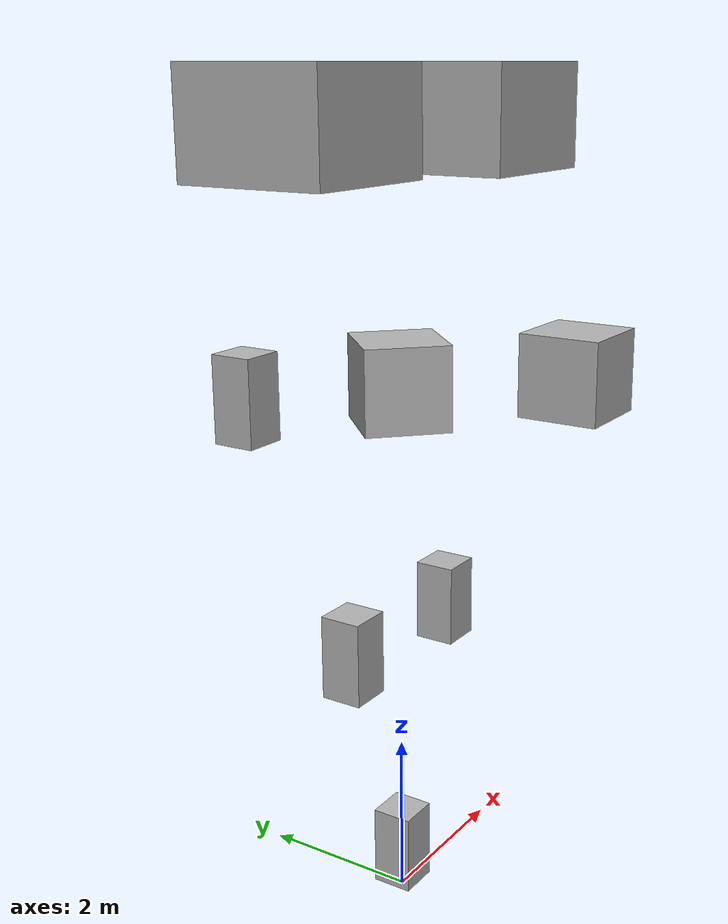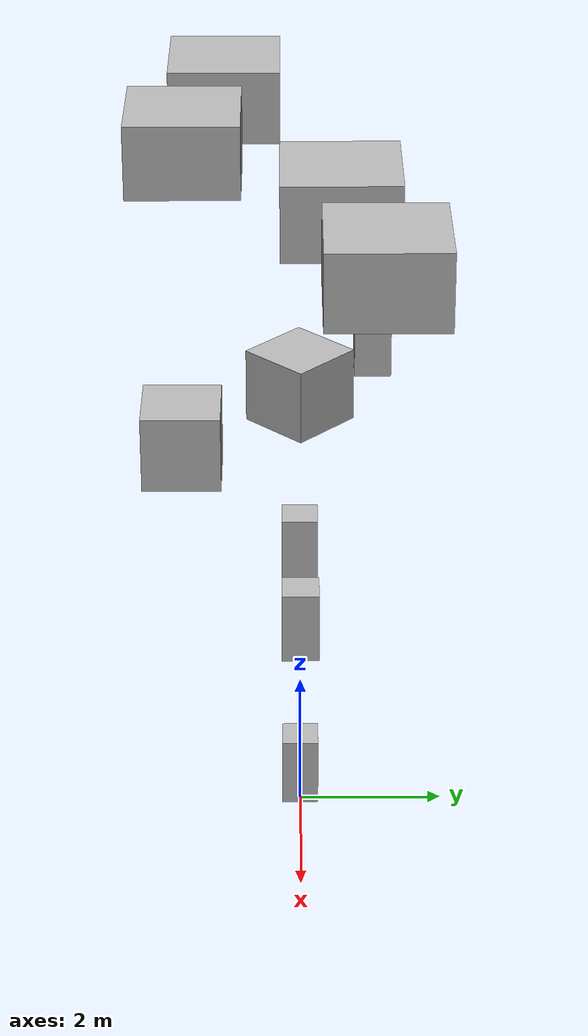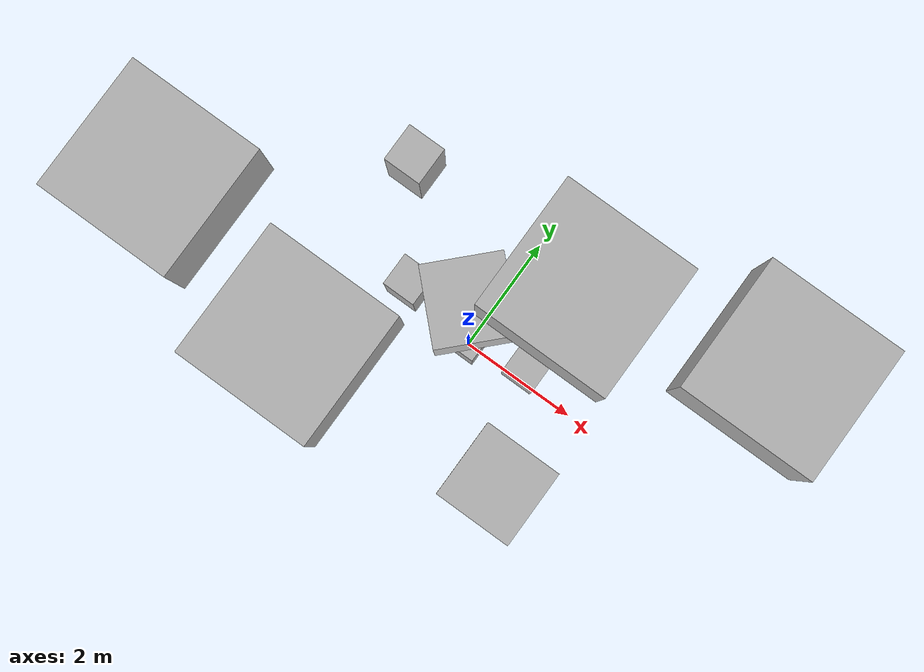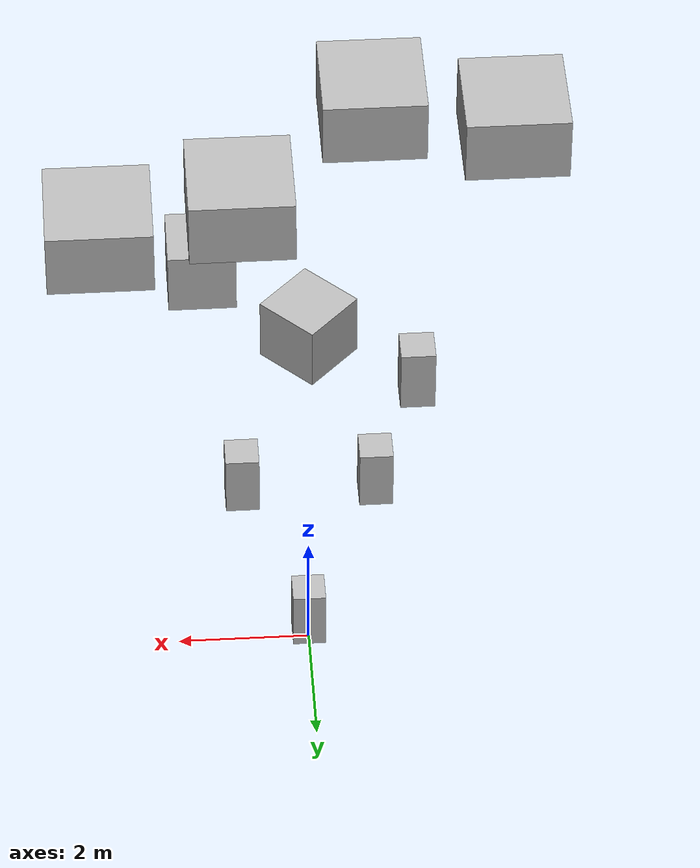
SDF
<?xml version='1.0'?>
<sdf version='1.7'>
  <model name='objects'>
    <!-- Link: cube001 -->
    <link name="cube001">
      <visual name="cube001_visual">
        <pose>0.0 0.0 0.6 0.0 0.0 0.0</pose>
        <geometry>
          <box>
            <size>0.5 0.5 1.0</size>
          </box>
        </geometry>
      </visual>
      <collision name="cube001_collision">
        <pose>0.0 0.0 0.6 0.0 0.0 0.0</pose>
        <geometry>
          <box>
            <size>0.5 0.5 1.0</size>
          </box>
        </geometry>
      </collision>
    </link>
    <joint name="joint_cube001" type="fixed">
      <parent>world</parent>
      <child>cube001</child>
    </joint>

    <!-- Link: cube002 -->
    <link name="cube002">
      <visual name="cube002_visual">
        <pose>-1.0 0.0 3.6 0.0 0.0 0.0</pose>
        <geometry>
          <box>
            <size>0.5 0.5 1.0</size>
          </box>
        </geometry>
      </visual>
      <collision name="cube002_collision">
        <pose>-1.0 0.0 3.6 0.0 0.0 0.0</pose>
        <geometry>
          <box>
            <size>0.5 0.5 1.0</size>
          </box>
        </geometry>
      </collision>
    </link>
    <joint name="joint_cube002" type="fixed">
      <parent>world</parent>
      <child>cube002</child>
    </joint>

    <!-- Link: cube003 -->
    <link name="cube003">
      <visual name="cube003_visual">
        <pose>1.0 0.0 3.6 0.0 0.0 0.0</pose>
        <geometry>
          <box>
            <size>0.5 0.5 1.0</size>
          </box>
        </geometry>
      </visual>
      <collision name="cube003_collision">
        <pose>1.0 0.0 3.6 0.0 0.0 0.0</pose>
        <geometry>
          <box>
            <size>0.5 0.5 1.0</size>
          </box>
        </geometry>
      </collision>
    </link>
    <joint name="joint_cube003" type="fixed">
      <parent>world</parent>
      <child>cube003</child>
    </joint>

    <!-- Link: cube004 -->
    <link name="cube004">
      <visual name="cube004_visual">
        <pose>0.0 0.0 6.6 0.0 0.0 0.8</pose>
        <geometry>
          <box>
            <size>1.0 1.0 1.0</size>
          </box>
        </geometry>
      </visual>
      <collision name="cube004_collision">
        <pose>0.0 0.0 6.6 0.0 0.0 0.8</pose>
        <geometry>
          <box>
            <size>1.0 1.0 1.0</size>
          </box>
        </geometry>
      </collision>
    </link>
    <joint name="joint_cube004" type="fixed">
      <parent>world</parent>
      <child>cube004</child>
    </joint>

    <!-- Link: cube005 -->
    <link name="cube005">
      <visual name="cube005_visual">
        <pose>-1.5 1.0 6.6 0.0 0.0 0.0</pose>
        <geometry>
          <box>
            <size>0.5 0.5 1.0</size>
          </box>
        </geometry>
      </visual>
      <collision name="cube005_collision">
        <pose>-1.5 1.0 6.6 0.0 0.0 0.0</pose>
        <geometry>
          <box>
            <size>0.5 0.5 1.0</size>
          </box>
        </geometry>
      </collision>
    </link>
    <joint name="joint_cube005" type="fixed">
      <parent>world</parent>
      <child>cube005</child>
    </joint>

    <!-- Link: cube006 -->
    <link name="cube006">
      <visual name="cube006_visual">
        <pose>1.5 -1.5 6.6 0.0 0.0 0.0</pose>
        <geometry>
          <box>
            <size>1.0 1.0 1.0</size>
          </box>
        </geometry>
      </visual>
      <collision name="cube006_collision">
        <pose>1.5 -1.5 6.6 0.0 0.0 0.0</pose>
        <geometry>
          <box>
            <size>1.0 1.0 1.0</size>
          </box>
        </geometry>
      </collision>
    </link>
    <joint name="joint_cube006" type="fixed">
      <parent>world</parent>
      <child>cube006</child>
    </joint>

    <!-- Link: cube007 -->
    <link name="cube007">
      <visual name="cube007_visual">
        <pose>-1.0 -1.5 9.6 0.0 0.0 0.0</pose>
        <geometry>
          <box>
            <size>1.5 1.5 1.0</size>
          </box>
        </geometry>
      </visual>
      <collision name="cube007_collision">
        <pose>-1.0 -1.5 9.6 0.0 0.0 0.0</pose>
        <geometry>
          <box>
            <size>1.5 1.5 1.0</size>
          </box>
        </geometry>
      </collision>
    </link>
    <joint name="joint_cube007" type="fixed">
      <parent>world</parent>
      <child>cube007</child>
    </joint>

    <!-- Link: cube008 -->
    <link name="cube008">
      <visual name="cube008_visual">
        <pose>1.0 0.5 9.6 0.0 0.0 0.0</pose>
        <geometry>
          <box>
            <size>1.5 1.5 1.0</size>
          </box>
        </geometry>
      </visual>
      <collision name="cube008_collision">
        <pose>1.0 0.5 9.6 0.0 0.0 0.0</pose>
        <geometry>
          <box>
            <size>1.5 1.5 1.0</size>
          </box>
        </geometry>
      </collision>
    </link>
    <joint name="joint_cube008" type="fixed">
      <parent>world</parent>
      <child>cube008</child>
    </joint>

    <!-- Link: cube009 -->
    <link name="cube009">
      <visual name="cube009_visual">
        <pose>-3.0 -1.0 9.6 0.0 0.0 0.0</pose>
        <geometry>
          <box>
            <size>1.5 1.5 1.0</size>
          </box>
        </geometry>
      </visual>
      <collision name="cube009_collision">
        <pose>-3.0 -1.0 9.6 0.0 0.0 0.0</pose>
        <geometry>
          <box>
            <size>1.5 1.5 1.0</size>
          </box>
        </geometry>
      </collision>
    </link>
    <joint name="joint_cube009" type="fixed">
      <parent>world</parent>
      <child>cube009</child>
    </joint>

    <!-- Link: cube010 -->
    <link name="cube010">
      <visual name="cube010_visual">
        <pose>3.0 1.0 9.6 0.0 0.0 0.0</pose>
        <geometry>
          <box>
            <size>1.5 1.5 1.0</size>
          </box>
        </geometry>
      </visual>
      <collision name="cube010_collision">
        <pose>3.0 1.0 9.6 0.0 0.0 0.0</pose>
        <geometry>
          <box>
            <size>1.5 1.5 1.0</size>
          </box>
        </geometry>
      </collision>
    </link>
    <joint name="joint_cube010" type="fixed">
      <parent>world</parent>
      <child>cube010</child>
    </joint>

  </model>
</sdf>
